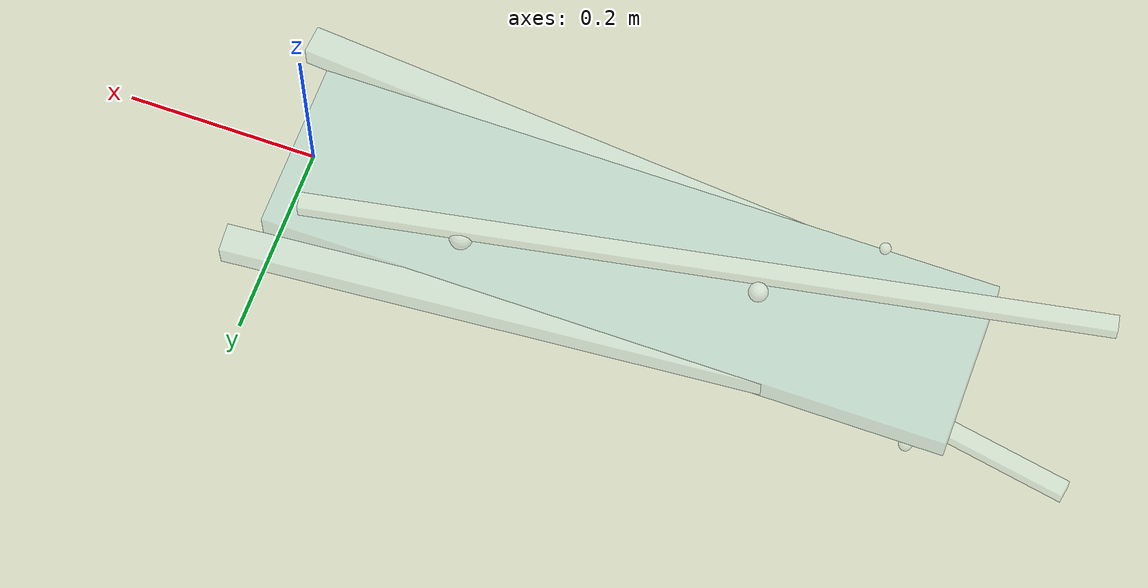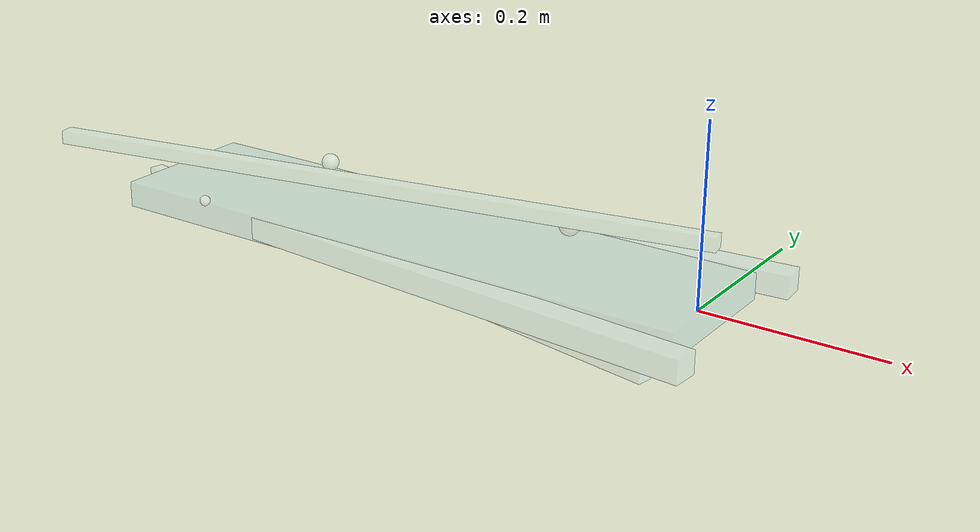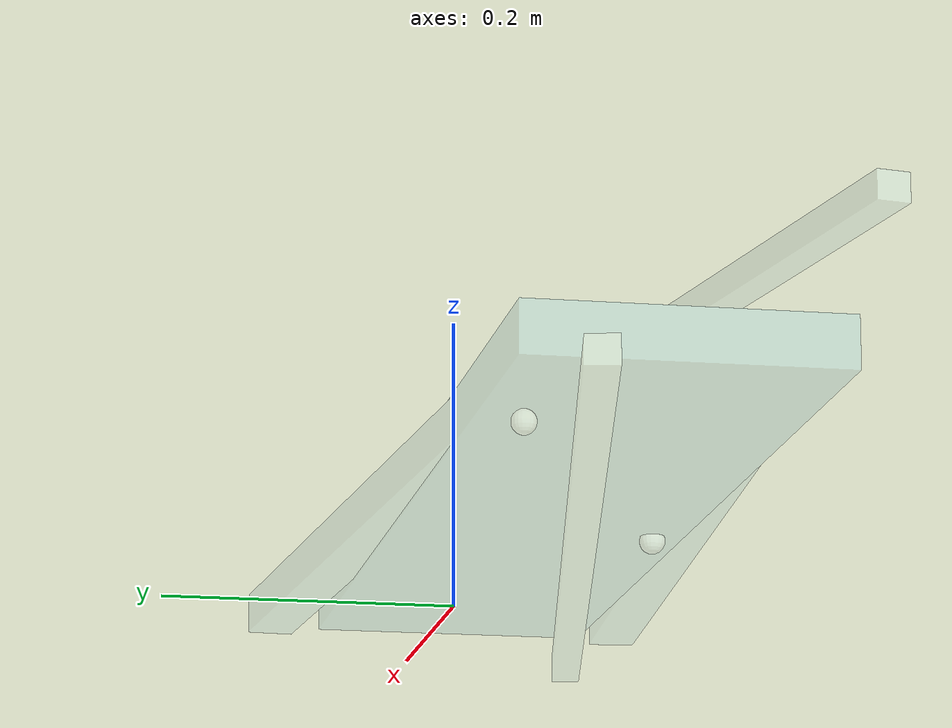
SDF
<?xml version="1.0"?>
<sdf version="1.9">
  <model name="rov_thruster_wash">
    <static>true</static>
    <link name="link">
      <visual name="center_turbulence">
        <pose>-0.34 0 0 0 0 0</pose>
        <geometry><box><size>0.72 0.18 0.030</size></box></geometry>
        <material>
          <ambient>0.45 0.80 0.90 0.10</ambient>
          <diffuse>0.45 0.80 0.90 0.10</diffuse>
          <specular>0.60 0.90 1.0 0.22</specular>
        </material>
        <transparency>0.90</transparency>
      </visual>
      <visual name="left_thruster_stream">
        <pose>-0.26 0.095 0 0 0 0.08</pose>
        <geometry><box><size>0.62 0.030 0.026</size></box></geometry>
        <material><ambient>0.70 0.95 1.0 0.20</ambient><diffuse>0.70 0.95 1.0 0.20</diffuse><specular>0.75 0.98 1.0 0.36</specular></material>
        <transparency>0.80</transparency>
      </visual>
      <visual name="right_thruster_stream">
        <pose>-0.26 -0.095 0 0 0 -0.08</pose>
        <geometry><box><size>0.62 0.030 0.026</size></box></geometry>
        <material><ambient>0.70 0.95 1.0 0.20</ambient><diffuse>0.70 0.95 1.0 0.20</diffuse><specular>0.75 0.98 1.0 0.36</specular></material>
        <transparency>0.80</transparency>
      </visual>
      <visual name="upper_shear">
        <pose>-0.42 0 0.045 0 0 0.18</pose>
        <geometry><box><size>0.82 0.018 0.016</size></box></geometry>
        <material><ambient>0.78 0.98 1.0 0.16</ambient><diffuse>0.78 0.98 1.0 0.16</diffuse><specular>0.80 1.0 1.0 0.30</specular></material>
        <transparency>0.84</transparency>
      </visual>
      <visual name="lower_shear">
        <pose>-0.42 0 -0.045 0 0 -0.18</pose>
        <geometry><box><size>0.82 0.018 0.016</size></box></geometry>
        <material><ambient>0.78 0.98 1.0 0.16</ambient><diffuse>0.78 0.98 1.0 0.16</diffuse><specular>0.80 1.0 1.0 0.30</specular></material>
        <transparency>0.84</transparency>
      </visual>
      <visual name="bubble_1"><pose>-0.18 0.050 0.035 0 0 0</pose><geometry><sphere><radius>0.012</radius></sphere></geometry><material><ambient>0.85 0.98 1.0 0.32</ambient><diffuse>0.85 0.98 1.0 0.32</diffuse></material><transparency>0.68</transparency></visual>
      <visual name="bubble_2"><pose>-0.30 -0.070 -0.018 0 0 0</pose><geometry><sphere><radius>0.008</radius></sphere></geometry><material><ambient>0.85 0.98 1.0 0.28</ambient><diffuse>0.85 0.98 1.0 0.28</diffuse></material><transparency>0.72</transparency></visual>
      <visual name="bubble_3"><pose>-0.48 0.015 0.055 0 0 0</pose><geometry><sphere><radius>0.010</radius></sphere></geometry><material><ambient>0.85 0.98 1.0 0.30</ambient><diffuse>0.85 0.98 1.0 0.30</diffuse></material><transparency>0.70</transparency></visual>
      <visual name="bubble_4"><pose>-0.58 -0.090 0.018 0 0 0</pose><geometry><sphere><radius>0.006</radius></sphere></geometry><material><ambient>0.85 0.98 1.0 0.25</ambient><diffuse>0.85 0.98 1.0 0.25</diffuse></material><transparency>0.75</transparency></visual>
      <visual name="bubble_5"><pose>-0.66 0.080 -0.040 0 0 0</pose><geometry><sphere><radius>0.007</radius></sphere></geometry><material><ambient>0.85 0.98 1.0 0.25</ambient><diffuse>0.85 0.98 1.0 0.25</diffuse></material><transparency>0.75</transparency></visual>
    </link>
  </model>
</sdf>
